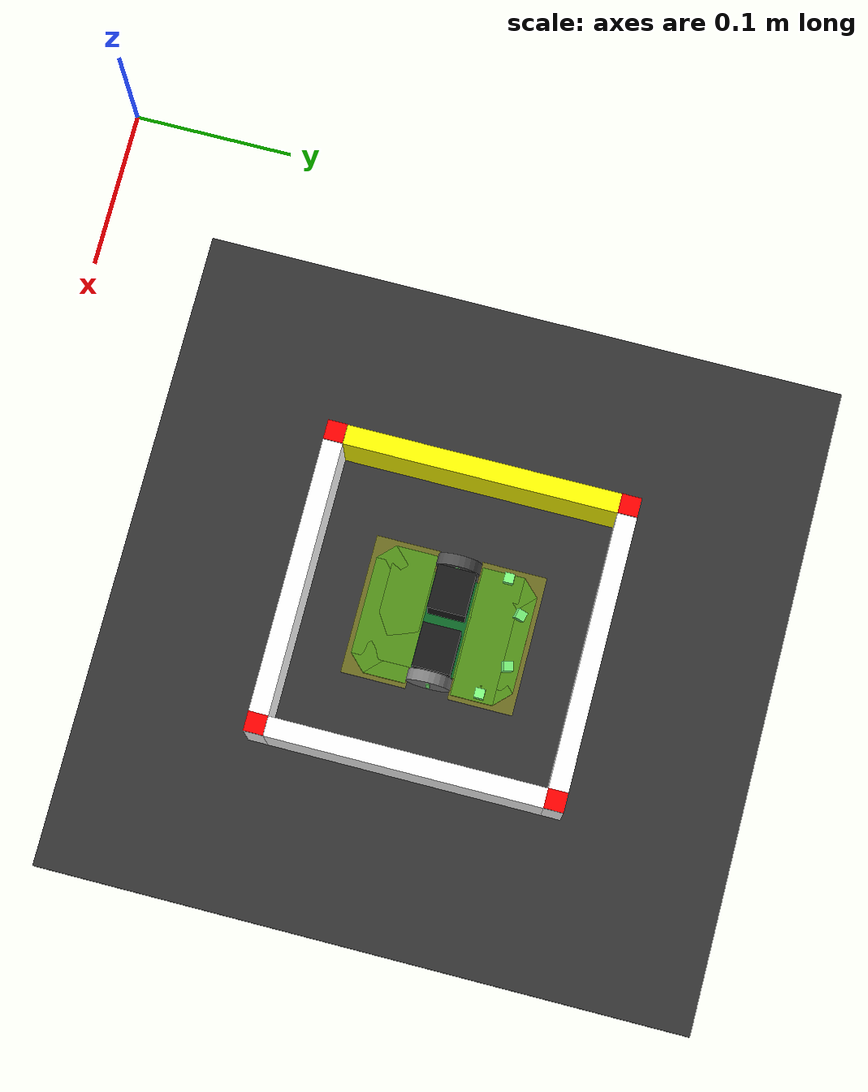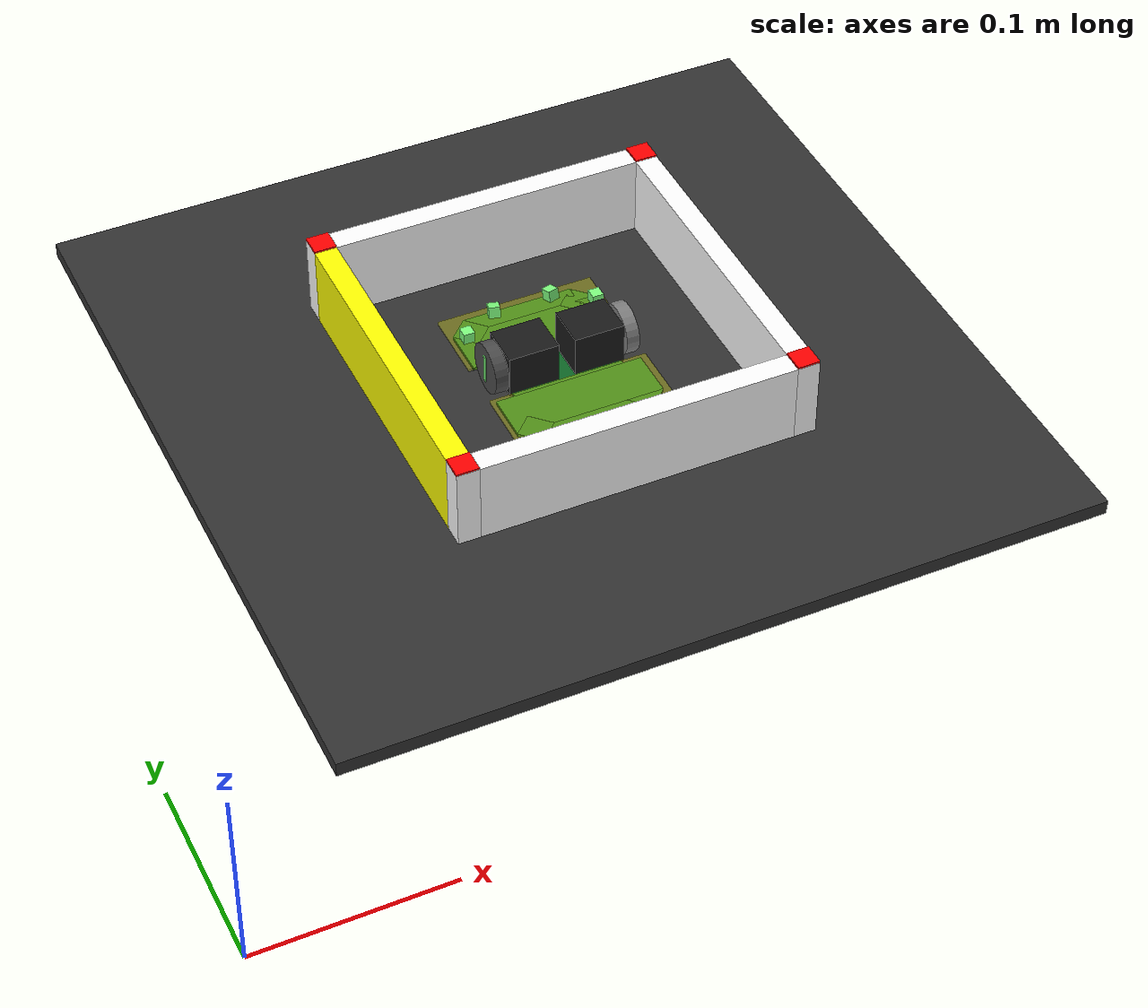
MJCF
<mujoco>
<compiler angle="degree" coordinate="local" inertiafromgeom="true" />
    <option integrator="RK4" timestep="0.0001" />
    <visual>
   <quality shadowsize="0" />
</visual>

    <include file="./body_Right_lotation.xml"/>
    <include file="./course_Right_lotation.xml"/>

</mujoco>

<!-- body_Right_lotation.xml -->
<mujoco model="micromouse">
<option>
    </option>
    <worldbody>
        <light diffuse=".5 .5 .5" pos="0 0 10" dir="0 0 -1"/>

         <body pos="0.27 0.27 0.0169" euler="0 0 90">
            <freejoint />
            <body name="torso">
                <geom name="mein_body1" type="box" friction="0.0 0.0 0.0" size="0.05 0.03 0.0008" rgba="0.05 0.4 0.15 1" pos="0 0 0.002" mass="4.65e-3"/>
                <geom name="mein_body_chip1" type="box" friction="0.0 0.0 0.0" size="0.00707 0.00707 0.0008" rgba="0.05 0.4 0.15 1" pos="0.04 0.03 0.002" euler="0 0 45" mass="4.65e-3"/>
                <geom name="mein_body_chip2" type="box" friction="0.0 0.0 0.0" size="0.00707 0.00707 0.0008" rgba="0.05 0.4 0.15 1" pos="0.04 -0.03 0.002" euler="0 0 45" mass="4.65e-3"/>
                <geom name="mein_body_chip3" type="box" friction="0.0 0.0 0.0" size="0.00707 0.00707 0.0008" rgba="0.05 0.4 0.15 1" pos="-0.04 0.03 0.002" euler="0 0 45" mass="4.65e-3"/>
                <geom name="mein_body_chip4" type="box" friction="0.0 0.0 0.0" size="0.00707 0.00707 0.0008" rgba="0.05 0.4 0.15 1" pos="-0.04 -0.03 0.002" euler="0 0 45" mass="4.65e-3"/>
                <geom name="mein_body4" type="box" friction="0.0 0.0 0.0" size="0.013 0.04 0.0008"  rgba="0.05 0.4 0.15 1" pos="-0.027 0 0.002" mass="4.65e-3"/>
                <geom name="mein_body5" type="box" friction="0.0 0.0 0.0" size="0.013 0.04 0.0008"  rgba="0.05 0.4 0.15 1" pos="0.027 0 0.002" mass="4.65e-3"/>
                <!--接触判定領域（この中に入ってるgeomが接触すると，センサ値としてその値を取得できる）-->
                <site name = "hit_box1" type = "box" size = "0.02 0.043 0.00078" pos="0.033 0 0.003" rgba="1 1 0 0.3"/>
                <site name = "hit_box2" type = "box" size = "0.02 0.043 0.00078" pos="-0.033 0 0.003" rgba="1 1 0 0.3"/>
            </body>

            <site name="sensor_left_front" type="box" size="0.003 0.003 0.003" pos="0.031 0.036 0.01" zaxis="1 0 0.01" rgba=".5 1 .5 1"/>
              <!-- zaxisの３つめ　0.1でちょい上向き -->
            <site name="sensor_left_side" type="box" size="0.003 0.003 0.003" pos="0.043 0.016 0.01" zaxis="0.25 1 0" rgba=".5 1 .5 1"/>
            <site name="sensor_right_front" type="box" size="0.003 0.003 0.003" pos="0.031 -0.036 0.01" zaxis="1 0 0.01" rgba=".5 1 .5 1"/>
            <site name="sensor_right_side" type="box" size="0.003 0.003 0.003" pos="0.043 -0.016 0.01" zaxis="0.25 -1 0" rgba=".5 1 .5 1"/>
            <site name="accerometer" type="sphere" size="0.001 0.001" pos="0 0 0.0"/>
            <site name="gyro" type="box" size="0.001 0.001 0.001" pos="0 0 0" />
            <site name="velocimeter" type="box" size="0.001 0.001 0.001" pos="0 0 0"/>

             <body name="left wheel" pos="-0.0 0.036 0.0135" zaxis="0 1 0">
                <joint name="left wheel joint" type="hinge" axis="0 0 1" limited="false" damping='9.6e-5' />
                <geom name="left_wheel" type="cylinder" size="0.0135 0.0035" friction="1.0 0 0"  rgba=".3 .3 0.3 1" mass="5e-3"/>
                <site type="box" size = "0.0012 0.008 0.004" rgba=".5 1 .5 1"/>
            </body>

            <body name="right wheel" pos="-0.0 -0.036 0.0135" zaxis="0 1 0">
                <joint name="right wheel joint" type="hinge" axis="0 0 1" limited="false" damping='9.6e-5' />
                <geom type="cylinder" size="0.0135 0.0035" friction="1.0 0 0" mass="5e-3"/> #直径27mmのタイヤ
                <site type="box" size = "0.0012 0.008 0.004" rgba=".5 1 .5 1"/>
            </body>

            <body name="motorbox1" pos="0 -0.018 0.0135" >
                <geom type="box" size="0.0117 0.0135 0.0117" rgba="0.1 0.1 0.1 1" mass="50e-3"/>
            </body>

            <body name="motorbox2" pos="0 0.018 0.0135">
                <geom type="box" size="0.0117 0.0135 0.0117" rgba="0.1 0.1 0.1 1" mass="50e-3"/>
            </body>

            <!--トラッキングカメラを装着-->
            <camera name="camera_name" mode="track" pos="-0.4 0 0.8" euler="0 -30 -90" fovy="60"/>

        </body>
    </worldbody>

    <actuator>
        <motor name="right" joint="right wheel joint" gear="9.0e-3" ctrllimited="true" ctrlrange="-0.2 0.2"/> ctrlrangeで入力の値の範囲を決められる
        <motor name="left"  joint="left wheel joint"  gear="9.0e-3" ctrllimited="true" ctrlrange="-0.2 0.2"/>
    </actuator>

    <sensor>
        <rangefinder name="LF" site="sensor_left_front" cutoff="0.3"/>
        <rangefinder name="LS" site="sensor_left_side" cutoff="0.3"/>
        <rangefinder name="RF" site="sensor_right_front" cutoff="0.3"/>
        <rangefinder name="RS" site="sensor_right_side" cutoff="0.3"/>
        <touch name = "HB1" site = "hit_box1"/>
        <touch name = "HB2" site = "hit_box2"/>
        <accelerometer name="Accel" site="accerometer"/>
        <gyro name="Gyro" site="gyro" noise="0.0001"/>
        <velocimeter name="Veloci" site="velocimeter"/>
    </sensor>

</mujoco>

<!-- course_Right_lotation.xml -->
<mujoco model="maze">
<compiler angle="degree" coordinate="local" inertiafromgeom="true" />
    <option integrator="RK4" />
    <worldbody>
       <!-- ベース板 -->
        <body name="base_plate1" pos="0.27 0.27 0.013">
        <geom type="box" mass="0.1" size="0.20 0.20 0.004" rgba="0.2 0.2 0.2 1" friction="0.0 0.0 0.0"/>
        </body>

        <!-- Column 1-6-->
        <body pos="0.18 0.18 0.037">
            <body pos="0 0 -0.0005">
                <geom type="box" mass="0.01" size="0.006 0.006 0.0245" rgba="1 1 1 1"/>
            </body>
            <!--柱上赤蓋-->
            <body pos="0 0 0.0245">
                <geom type="box" mass="0.01" size="0.006 0.006 0.0005" rgba="1 0 0 1"/>
            </body>
        </body>
        <!-- Column 1-7-->
        <body pos="0.36 0.18 0.037">
            <body pos="0 0 -0.0005">
                <geom type="box" mass="0.01" size="0.006 0.006 0.0245" rgba="1 1 1 1"/>
            </body>
            <!--柱上赤蓋-->
            <body pos="0 0 0.0245">
                <geom type="box" mass="0.01" size="0.006 0.006 0.0005" rgba="1 0 0 1"/>
            </body>
        </body>
        <!-- Column 2-10-->
        <body pos="0.18 0.36 0.037">
            <body pos="0 0 -0.0005">
                <geom type="box" mass="0.01" size="0.006 0.006 0.0245" rgba="1 1 1 1"/>
            </body>
            <!--柱上赤蓋-->
            <body pos="0 0 0.0245">
                <geom type="box" mass="0.01" size="0.006 0.006 0.0005" rgba="1 0 0 1"/>
            </body>
        </body>
        <!-- Column 1-11-->
        <body pos="0.36 0.36 0.037">
            <body pos="0 0 -0.0005">
                <geom type="box" mass="0.01" size="0.006 0.006 0.0245" rgba="1 1 1 1"/>
            </body>
            <!--柱上赤蓋-->
            <body pos="0 0 0.0245">
                <geom type="box" mass="0.01" size="0.006 0.006 0.0005" rgba="1 0 0 1"/>
            </body>
        </body>

        <!-- #############################基本コースここまで###############################-->
        <!-- #############################基本コースここまで###############################-->
        <!-- #############################基本コースここまで###############################-->

        <!-- #############################ランダム出現用壁の定義###############################-->
        <!-- #############################ランダム出現用壁の定義###############################-->
        <!-- #############################ランダム出現用壁の定義###############################-->
        <!-- #############################ランダム出現用壁の定義###############################-->

        <!-- #############################コース1###############################-->
        <!-- #############################コース1###############################-->

        <!-- Wall 1-左-->
        <body pos="0.18 0.27 0.037" name="1-left_wall">
            <body pos="0 0 -0.0005">
                <geom type="box" mass="0.01" size="0.006 0.084 0.0245" rgba="1 1 0 1"/>
                <joint type="slide" range="-0.1 0.13" limited="true"/>
            </body>
        </body>

        <!-- Wall 1-前-->
        <body pos="0.27 0.36 0.037" name="1-forward_wall">
            <body pos="0 0 -0.0005">
                <geom type="box" mass="0.01" size="0.084 0.006 0.0245" rgba="1 1 1 1"/>
                <joint type="slide" range="-0.1 0.13" limited="true"/>
            </body>
        </body>

        <!-- Wall 1-右 -->
        <body pos="0.36 0.27 0.037" name="1-right_wall">
            <body pos="0 0 -0.0005">
                <geom type="box" mass="0.01" size="0.006 0.084 0.0245" rgba="1 1 1 1"/>
                <joint type="slide" range="-0.1 0.13" limited="true"/>
            </body>
        </body>

        <!-- Wall 1-後ろ -->
        <body pos="0.27 0.18 0.037" name="1-back_wall">
            <body pos="0 0 -0.0005">
                <geom type="box" mass="0.01" size="0.084 0.006 0.0245" rgba="1 1 1 1"/>
                <joint type="slide" range="-0.1 0.13" limited="true"/>
            </body>
        </body>

    </worldbody>
</mujoco>
